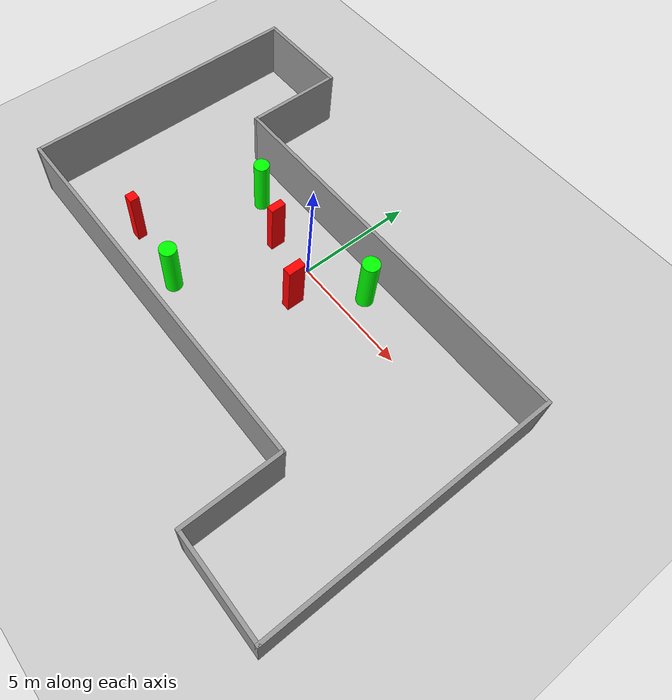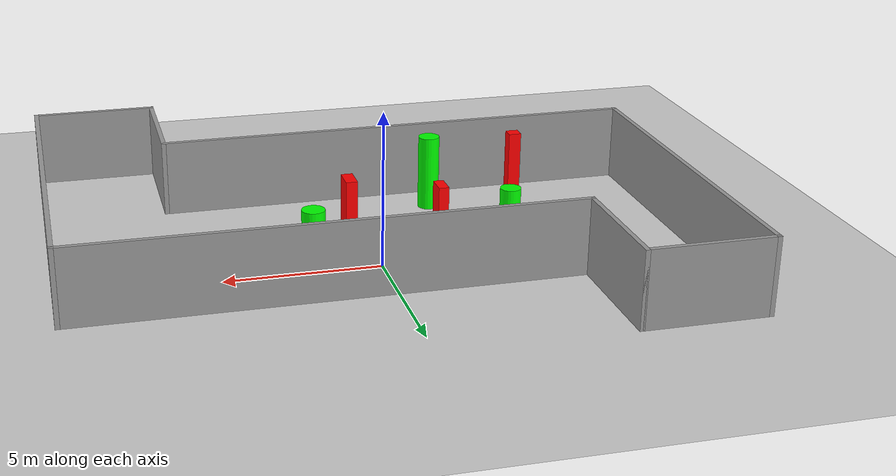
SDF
<sdf version="1.7">
 <world name="default">
  <light name="sun" type="directional">
   <pose>0 0 10 0 -0 0</pose>
   <diffuse>0.8 0.8 0.8 1</diffuse>
   <specular>0.2 0.2 0.2 1</specular>
   <attenuation>
    <range>1000</range>
    <constant>0.9</constant>
    <linear>0.01</linear>
    <quadratic>0.001</quadratic>
   </attenuation>
   <direction>-0.5 0.1 -0.9</direction>
   <spot><inner_angle>0</inner_angle><outer_angle>0</outer_angle><falloff>0</falloff></spot>
  </light>
  <model name="ground_plane">
   <static>1</static>
   <link name="link">
    <collision name="collision">
     <geometry><plane><normal>0 0 1</normal><size>100 100</size></plane></geometry>
     <surface>
      <contact><collide_bitmask>65535</collide_bitmask></contact>
      <friction><ode><mu>100</mu><mu2>50</mu2></ode></friction>
     </surface>
    </collision>
    <visual name="visual">
     <cast_shadows>0</cast_shadows>
     <geometry><plane><normal>0 0 1</normal><size>100 100</size></plane></geometry>
     <material>
      <script><uri>file://media/materials/scripts/gazebo.material</uri><name>Gazebo/Grey</name></script>
     </material>
    </visual>
   </link>
  </model>
  <gravity>0 0 -9.8</gravity>
  <magnetic_field>6e-06 2.3e-05 -4.2e-05</magnetic_field>
  <atmosphere type="adiabatic"/>
  <physics type="ode">
   <max_step_size>0.001</max_step_size>
   <real_time_factor>1</real_time_factor>
   <real_time_update_rate>1000</real_time_update_rate>
  </physics>
  <scene><ambient>0.4 0.4 0.4 1</ambient><background>0.7 0.7 0.7 1</background><shadows>1</shadows></scene>
  <spherical_coordinates>
   <surface_model>EARTH_WGS84</surface_model>
   <latitude_deg>0</latitude_deg>
   <longitude_deg>0</longitude_deg>
   <elevation>0</elevation>
   <heading_deg>0</heading_deg>
  </spherical_coordinates>
  <model name="my_base_walls">
   <link name="Wall_13">
    <collision name="Wall_13_Collision">
     <geometry><box><size>12.15 0.15 2.5</size></box></geometry>
     <pose>0 0 1.25 0 -0 0</pose>
    </collision>
    <visual name="Wall_13_Visual">
     <pose>0 0 1.25 0 -0 0</pose>
     <geometry><box><size>12.15 0.15 2.5</size></box></geometry>
     <material>
      <script><uri>file://media/materials/scripts/gazebo.material</uri><name>Gazebo/Grey</name></script>
      <ambient>1 1 1 1</ambient>
     </material>
     <meta><layer>0</layer></meta>
    </visual>
    <pose>10 -2 0 0 -0 1.5708</pose>
   </link>
   <link name="Wall_15">
    <collision name="Wall_15_Collision">
     <geometry><box><size>16.15 0.15 2.5</size></box></geometry>
     <pose>0 0 1.25 0 -0 0</pose>
    </collision>
    <visual name="Wall_15_Visual">
     <pose>0 0 1.25 0 -0 0</pose>
     <geometry><box><size>16.15 0.15 2.5</size></box></geometry>
     <material>
      <script><uri>file://media/materials/scripts/gazebo.material</uri><name>Gazebo/Grey</name></script>
      <ambient>1 1 1 1</ambient>
     </material>
     <meta><layer>0</layer></meta>
    </visual>
    <pose>2 4 0 0 -0 3.14159</pose>
   </link>
   <link name="Wall_17">
    <collision name="Wall_17_Collision">
     <geometry><box><size>4.15 0.15 2.5</size></box></geometry>
     <pose>0 0 1.25 0 -0 0</pose>
    </collision>
    <visual name="Wall_17_Visual">
     <pose>0 0 1.25 0 -0 0</pose>
     <geometry><box><size>4.15 0.15 2.5</size></box></geometry>
     <material>
      <script><uri>file://media/materials/scripts/gazebo.material</uri><name>Gazebo/Grey</name></script>
      <ambient>1 1 1 1</ambient>
     </material>
     <meta><layer>0</layer></meta>
    </visual>
    <pose>6 -6 0 0 -0 -1.5708</pose>
   </link>
   <link name="Wall_19">
    <collision name="Wall_19_Collision">
     <geometry><box><size>12.15 0.15 2.5</size></box></geometry>
     <pose>0 0 1.25 0 -0 0</pose>
    </collision>
    <visual name="Wall_19_Visual">
     <pose>0 0 1.25 0 -0 0</pose>
     <geometry><box><size>12.15 0.15 2.5</size></box></geometry>
     <material>
      <script><uri>file://media/materials/scripts/gazebo.material</uri><name>Gazebo/Grey</name></script>
      <ambient>1 1 1 1</ambient>
     </material>
     <meta><layer>0</layer></meta>
    </visual>
    <pose>-10 2 0 0 -0 1.5708</pose>
   </link>
   <link name="Wall_21">
    <collision name="Wall_21_Collision">
     <geometry><box><size>4.15 0.15 2.5</size></box></geometry>
     <pose>0 0 1.25 0 -0 0</pose>
    </collision>
    <visual name="Wall_21_Visual">
     <pose>0 0 1.25 0 -0 0</pose>
     <geometry><box><size>4.15 0.15 2.5</size></box></geometry>
     <material>
      <script><uri>file://media/materials/scripts/gazebo.material</uri><name>Gazebo/Grey</name></script>
      <ambient>1 1 1 1</ambient>
     </material>
     <meta><layer>0</layer></meta>
    </visual>
    <pose>-8 8 0 0 -0 0</pose>
   </link>
   <link name="Wall_23">
    <collision name="Wall_23_Collision">
     <geometry><box><size>4.15 0.15 2.5</size></box></geometry>
     <pose>0 0 1.25 0 -0 0</pose>
    </collision>
    <visual name="Wall_23_Visual">
     <pose>0 0 1.25 0 -0 0</pose>
     <geometry><box><size>4.15 0.15 2.5</size></box></geometry>
     <material>
      <script><uri>file://media/materials/scripts/gazebo.material</uri><name>Gazebo/Grey</name></script>
      <ambient>1 1 1 1</ambient>
     </material>
     <meta><layer>0</layer></meta>
    </visual>
    <pose>-6 6 0 0 -0 -1.5708</pose>
   </link>
   <link name="Wall_25">
    <collision name="Wall_25_Collision">
     <geometry><box><size>4.15 0.15 2.5</size></box></geometry>
     <pose>0 0 1.25 0 -0 0</pose>
    </collision>
    <visual name="Wall_25_Visual">
     <pose>0 0 1.25 0 -0 0</pose>
     <geometry><box><size>4.15 0.15 2.5</size></box></geometry>
     <material>
      <script><uri>file://media/materials/scripts/gazebo.material</uri><name>Gazebo/Grey</name></script>
      <ambient>1 1 1 1</ambient>
     </material>
     <meta><layer>0</layer></meta>
    </visual>
    <pose>8 -8 0 0 -0 0</pose>
   </link>
   <link name="Wall_9">
    <collision name="Wall_9_Collision">
     <geometry><box><size>16.15 0.15 2.5</size></box></geometry>
     <pose>0 0 1.25 0 -0 0</pose>
    </collision>
    <visual name="Wall_9_Visual">
     <pose>0 0 1.25 0 -0 0</pose>
     <geometry><box><size>16.15 0.15 2.5</size></box></geometry>
     <material>
      <script><uri>file://media/materials/scripts/gazebo.material</uri><name>Gazebo/Grey</name></script>
      <ambient>1 1 1 1</ambient>
     </material>
     <meta><layer>0</layer></meta>
    </visual>
    <pose>-2 -4 0 0 -0 3.14159</pose>
   </link>
   <static>1</static>
   <pose>-0 -2 0 0 -0 0</pose>
  </model>
  <model name="cylinder1">
   <static>1</static>
   <link name="link">
    <inertial>
     <mass>1</mass>
     <inertia><ixx>0.5</ixx><ixy>0</ixy><ixz>0</ixz><iyy>0.5</iyy><iyz>0</iyz><izz>1</izz></inertia>
    </inertial>
    <collision name="collision">
     <geometry><cylinder><radius>0.3576200632332487</radius><length>2.5</length></cylinder></geometry>
    </collision>
    <visual name="visual">
     <geometry><cylinder><radius>0.3576200632332487</radius><length>2.5</length></cylinder></geometry>
     <material>
      <ambient>0 1 0 1</ambient>
      <diffuse>0 1 0 1</diffuse>
      <specular>0.1 0.1 0.1 1</specular>
      <emissive>0 0 0 0</emissive>
     </material>
    </visual>
   </link>
   <pose>2.3617520031150825 0.9660948073731834 1.25 0 0 0</pose>
  </model>
  <model name="cylinder2">
   <static>1</static>
   <link name="link">
    <inertial>
     <mass>1</mass>
     <inertia><ixx>0.5</ixx><ixy>0</ixy><ixz>0</ixz><iyy>0.5</iyy><iyz>0</iyz><izz>1</izz></inertia>
    </inertial>
    <collision name="collision">
     <geometry><cylinder><radius>0.32097623412894144</radius><length>2.5</length></cylinder></geometry>
    </collision>
    <visual name="visual">
     <geometry><cylinder><radius>0.32097623412894144</radius><length>2.5</length></cylinder></geometry>
     <material>
      <ambient>0 1 0 1</ambient>
      <diffuse>0 1 0 1</diffuse>
      <specular>0.1 0.1 0.1 1</specular>
      <emissive>0 0 0 0</emissive>
     </material>
    </visual>
   </link>
   <pose>-3.862280729374192 0.6340357741152811 1.25 0 0 0</pose>
  </model>
  <model name="cylinder3">
   <static>1</static>
   <link name="link">
    <inertial>
     <mass>1</mass>
     <inertia><ixx>0.5</ixx><ixy>0</ixy><ixz>0</ixz><iyy>0.5</iyy><iyz>0</iyz><izz>1</izz></inertia>
    </inertial>
    <collision name="collision">
     <geometry><cylinder><radius>0.34945449568481024</radius><length>2.5</length></cylinder></geometry>
    </collision>
    <visual name="visual">
     <geometry><cylinder><radius>0.34945449568481024</radius><length>2.5</length></cylinder></geometry>
     <material>
      <ambient>0 1 0 1</ambient>
      <diffuse>0 1 0 1</diffuse>
      <specular>0.1 0.1 0.1 1</specular>
      <emissive>0 0 0 0</emissive>
     </material>
    </visual>
   </link>
   <pose>-2.7567431605501986 -4.587479035798999 1.25 0 0 0</pose>
  </model>
  <model name="box1">
   <static>1</static>
   <link name="link">
    <inertial>
     <mass>1</mass>
     <inertia><ixx>0.083</ixx><ixy>0</ixy><ixz>0</ixz><iyy>0.083</iyy><iyz>0</iyz><izz>0.083</izz></inertia>
    </inertial>
    <collision name="collision">
     <geometry><box><size>0.4113730763092474 0.4018184186236682 2.5</size></box></geometry>
    </collision>
    <visual name="visual">
     <geometry><box><size>0.4113730763092474 0.4018184186236682 2.5</size></box></geometry>
     <material>
      <ambient>1 0 0 1</ambient>
      <diffuse>1 0 0 1</diffuse>
      <specular>0.1 0.1 0.1 1</specular>
      <emissive>0 0 0 0</emissive>
     </material>
    </visual>
    <sensor name="my_contact" type="contact">
     <contact><collision>box_collision</collision><topic>__default_topic__</topic></contact>
    </sensor>
   </link>
   <pose>-5.652746872550617 -4.325356179469879 1.25 0 0 0</pose>
  </model>
  <model name="box2">
   <static>1</static>
   <link name="link">
    <inertial>
     <mass>1</mass>
     <inertia><ixx>0.083</ixx><ixy>0</ixy><ixz>0</ixz><iyy>0.083</iyy><iyz>0</iyz><izz>0.083</izz></inertia>
    </inertial>
    <collision name="collision">
     <geometry><box><size>0.3717053128362463 0.7543762057893952 2.5</size></box></geometry>
    </collision>
    <visual name="visual">
     <geometry><box><size>0.3717053128362463 0.7543762057893952 2.5</size></box></geometry>
     <material>
      <ambient>1 0 0 1</ambient>
      <diffuse>1 0 0 1</diffuse>
      <specular>0.1 0.1 0.1 1</specular>
      <emissive>0 0 0 0</emissive>
     </material>
    </visual>
    <sensor name="my_contact" type="contact">
     <contact><collision>box_collision</collision><topic>__default_topic__</topic></contact>
    </sensor>
   </link>
   <pose>0.7456322514576064 -1.3459516313441648 1.25 0 0 0</pose>
  </model>
  <model name="box3">
   <static>1</static>
   <link name="link">
    <inertial>
     <mass>1</mass>
     <inertia><ixx>0.083</ixx><ixy>0</ixy><ixz>0</ixz><iyy>0.083</iyy><iyz>0</iyz><izz>0.083</izz></inertia>
    </inertial>
    <collision name="collision">
     <geometry><box><size>0.32155294645138943 0.6564845658567497 2.5</size></box></geometry>
    </collision>
    <visual name="visual">
     <geometry><box><size>0.32155294645138943 0.6564845658567497 2.5</size></box></geometry>
     <material>
      <ambient>1 0 0 1</ambient>
      <diffuse>1 0 0 1</diffuse>
      <specular>0.1 0.1 0.1 1</specular>
      <emissive>0 0 0 0</emissive>
     </material>
    </visual>
    <sensor name="my_contact" type="contact">
     <contact><collision>box_collision</collision><topic>__default_topic__</topic></contact>
    </sensor>
   </link>
   <pose>-1.8837640255005752 -0.15201896936138581 1.25 0 0 0</pose>
  </model>
 </world>
</sdf>
